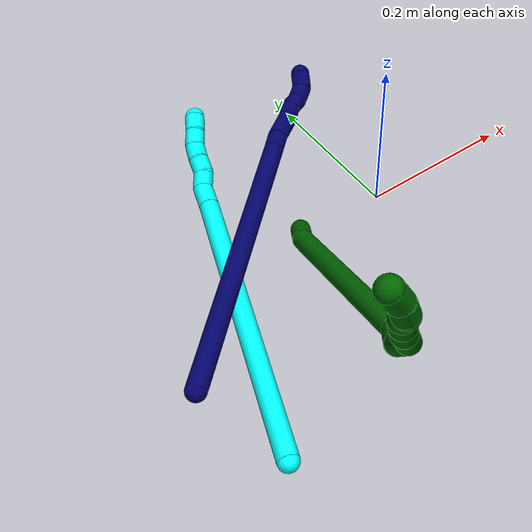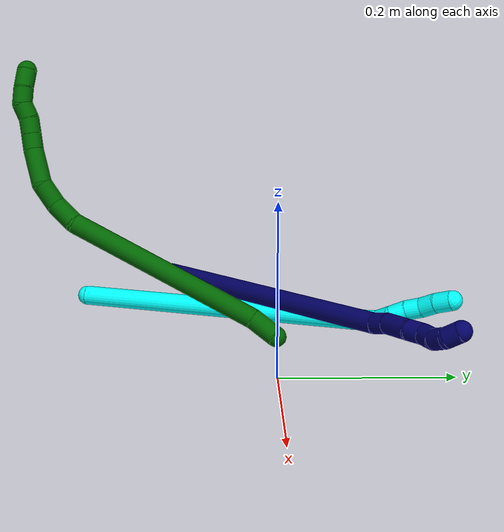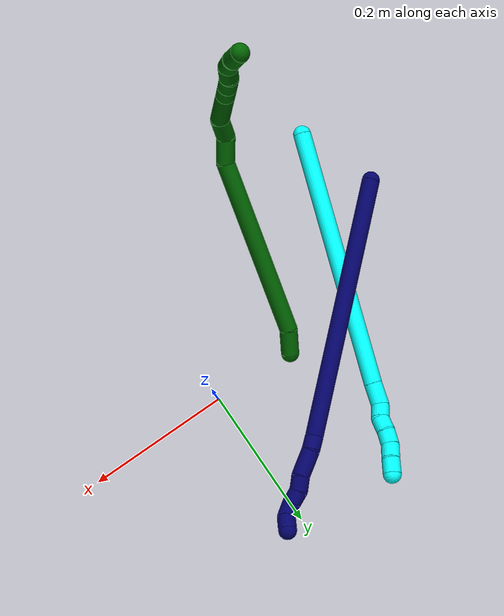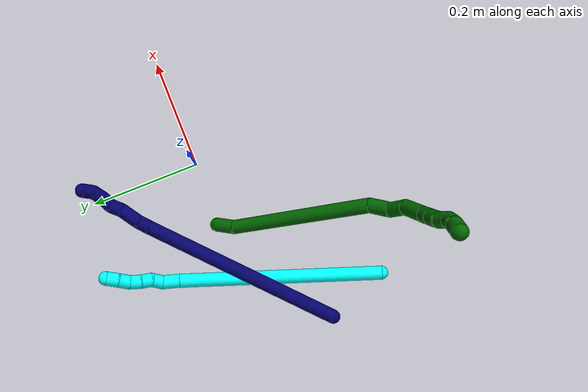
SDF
<sdf version="1.7">
 <world name="default">
  <model name="3">
   <static>0</static>
   <link name="3">
    <collision name="collision-cylinder-e_1_1_4">
     <pose>0.031161 0.158458 0.084653 -1.08014 0.171743 -0.103126</pose>
     <geometry><cylinder><radius>0.0125</radius><length>0.36467</length></cylinder></geometry>
     <surface>
      <friction><ode><mu>1.16</mu><mu2>1.16</mu2><slip1>0</slip1><slip2>0</slip2></ode></friction>
      <contact><ode><kp>1e+06</kp><kd>1</kd><max_vel>0</max_vel><min_depth>0.001</min_depth></ode></contact>
     </surface>
    </collision>
    <visual name="visual-cylinder-e_1_1_4">
     <pose>0.031161 0.158458 0.084653 -1.08014 0.171743 -0.103126</pose>
     <geometry><cylinder><radius>0.0125</radius><length>0.36467</length></cylinder></geometry>
     <material><ambient>0.003922 1 0.996078 1</ambient></material>
    </visual>
    <collision name="collision-cylinder-e_2_4_5">
     <pose>0.066084 0.330726 0.176191 -1.1083 0.239134 -0.148419</pose>
     <geometry><cylinder><radius>0.0125</radius><length>0.031768</length></cylinder></geometry>
     <surface>
      <friction><ode><mu>1.16</mu><mu2>1.16</mu2><slip1>0</slip1><slip2>0</slip2></ode></friction>
      <contact><ode><kp>1e+06</kp><kd>1</kd><max_vel>0</max_vel><min_depth>0.001</min_depth></ode></contact>
     </surface>
    </collision>
    <visual name="visual-cylinder-e_2_4_5">
     <pose>0.066084 0.330726 0.176191 -1.1083 0.239134 -0.148419</pose>
     <geometry><cylinder><radius>0.0125</radius><length>0.031768</length></cylinder></geometry>
     <material><ambient>0.003922 1 0.996078 1</ambient></material>
    </visual>
    <collision name="collision-cylinder-e_3_5_6">
     <pose>0.071377 0.354895 0.1825 -1.62641 0.146449 -0.154796</pose>
     <geometry><cylinder><radius>0.0125</radius><length>0.020973</length></cylinder></geometry>
     <surface>
      <friction><ode><mu>1.16</mu><mu2>1.16</mu2><slip1>0</slip1><slip2>0</slip2></ode></friction>
      <contact><ode><kp>1e+06</kp><kd>1</kd><max_vel>0</max_vel><min_depth>0.001</min_depth></ode></contact>
     </surface>
    </collision>
    <visual name="visual-cylinder-e_3_5_6">
     <pose>0.071377 0.354895 0.1825 -1.62641 0.146449 -0.154796</pose>
     <geometry><cylinder><radius>0.0125</radius><length>0.020973</length></cylinder></geometry>
     <material><ambient>0.003922 1 0.996078 1</ambient></material>
    </visual>
    <collision name="collision-cylinder-e_4_6_7">
     <pose>0.077542 0.373993 0.183513 -1.39089 0.480851 -0.403631</pose>
     <geometry><cylinder><radius>0.0125</radius><length>0.02004</length></cylinder></geometry>
     <surface>
      <friction><ode><mu>1.16</mu><mu2>1.16</mu2><slip1>0</slip1><slip2>0</slip2></ode></friction>
      <contact><ode><kp>1e+06</kp><kd>1</kd><max_vel>0</max_vel><min_depth>0.001</min_depth></ode></contact>
     </surface>
    </collision>
    <visual name="visual-cylinder-e_4_6_7">
     <pose>0.077542 0.373993 0.183513 -1.39089 0.480851 -0.403631</pose>
     <geometry><cylinder><radius>0.0125</radius><length>0.02004</length></cylinder></geometry>
     <material><ambient>0.003922 1 0.996078 1</ambient></material>
    </visual>
    <collision name="collision-cylinder-e_5_7_8">
     <pose>0.085291 0.392071 0.187442 -1.32531 0.312947 -0.244992</pose>
     <geometry><cylinder><radius>0.0125</radius><length>0.020234</length></cylinder></geometry>
     <surface>
      <friction><ode><mu>1.16</mu><mu2>1.16</mu2><slip1>0</slip1><slip2>0</slip2></ode></friction>
      <contact><ode><kp>1e+06</kp><kd>1</kd><max_vel>0</max_vel><min_depth>0.001</min_depth></ode></contact>
     </surface>
    </collision>
    <visual name="visual-cylinder-e_5_7_8">
     <pose>0.085291 0.392071 0.187442 -1.32531 0.312947 -0.244992</pose>
     <geometry><cylinder><radius>0.0125</radius><length>0.020234</length></cylinder></geometry>
     <material><ambient>0.003922 1 0.996078 1</ambient></material>
    </visual>
    <collision name="collision-cylinder-e_6_8_9">
     <pose>0.090148 0.411595 0.189638 -1.58493 0.169389 -0.171788</pose>
     <geometry><cylinder><radius>0.0125</radius><length>0.020671</length></cylinder></geometry>
     <surface>
      <friction><ode><mu>1.16</mu><mu2>1.16</mu2><slip1>0</slip1><slip2>0</slip2></ode></friction>
      <contact><ode><kp>1e+06</kp><kd>1</kd><max_vel>0</max_vel><min_depth>0.001</min_depth></ode></contact>
     </surface>
    </collision>
    <visual name="visual-cylinder-e_6_8_9">
     <pose>0.090148 0.411595 0.189638 -1.58493 0.169389 -0.171788</pose>
     <geometry><cylinder><radius>0.0125</radius><length>0.020671</length></cylinder></geometry>
     <material><ambient>0.003922 1 0.996078 1</ambient></material>
    </visual>
    <collision name="collision-cylinder-e_7_9_2">
     <pose>0.093497 0.432401 0.190823 -1.44631 0.149036 -0.131603</pose>
     <geometry><cylinder><radius>0.0125</radius><length>0.021644</length></cylinder></geometry>
     <surface>
      <friction><ode><mu>1.16</mu><mu2>1.16</mu2><slip1>0</slip1><slip2>0</slip2></ode></friction>
      <contact><ode><kp>1e+06</kp><kd>1</kd><max_vel>0</max_vel><min_depth>0.001</min_depth></ode></contact>
     </surface>
    </collision>
    <visual name="visual-cylinder-e_7_9_2">
     <pose>0.093497 0.432401 0.190823 -1.44631 0.149036 -0.131603</pose>
     <geometry><cylinder><radius>0.0125</radius><length>0.021644</length></cylinder></geometry>
     <material><ambient>0.003922 1 0.996078 1</ambient></material>
    </visual>
    <collision name="collision-sphere-2">
     <pose>0.095104 0.44302 0.192151 0 -0 0</pose>
     <geometry><sphere><radius>0.0125</radius></sphere></geometry>
     <surface>
      <friction><ode><mu>1.16</mu><mu2>1.16</mu2><slip1>0</slip1><slip2>0</slip2></ode></friction>
      <contact><ode><kp>1e+06</kp><kd>1</kd><max_vel>0</max_vel><min_depth>0.001</min_depth></ode></contact>
     </surface>
    </collision>
    <visual name="visual-sphere-2">
     <pose>0.095104 0.44302 0.192151 0 -0 0</pose>
     <geometry><sphere><radius>0.0125</radius></sphere></geometry>
     <material><ambient>0.003922 1 0.996078 1</ambient></material>
    </visual>
    <collision name="collision-sphere-9">
     <pose>0.09189 0.421781 0.189494 0 -0 0</pose>
     <geometry><sphere><radius>0.0125</radius></sphere></geometry>
     <surface>
      <friction><ode><mu>1.16</mu><mu2>1.16</mu2><slip1>0</slip1><slip2>0</slip2></ode></friction>
      <contact><ode><kp>1e+06</kp><kd>1</kd><max_vel>0</max_vel><min_depth>0.001</min_depth></ode></contact>
     </surface>
    </collision>
    <visual name="visual-sphere-9">
     <pose>0.09189 0.421781 0.189494 0 -0 0</pose>
     <geometry><sphere><radius>0.0125</radius></sphere></geometry>
     <material><ambient>0.003922 1 0.996078 1</ambient></material>
    </visual>
    <collision name="collision-sphere-4">
     <pose>0.062322 0.316915 0.169306 0 -0 0</pose>
     <geometry><sphere><radius>0.0125</radius></sphere></geometry>
     <surface>
      <friction><ode><mu>1.16</mu><mu2>1.16</mu2><slip1>0</slip1><slip2>0</slip2></ode></friction>
      <contact><ode><kp>1e+06</kp><kd>1</kd><max_vel>0</max_vel><min_depth>0.001</min_depth></ode></contact>
     </surface>
    </collision>
    <visual name="visual-sphere-4">
     <pose>0.062322 0.316915 0.169306 0 -0 0</pose>
     <geometry><sphere><radius>0.0125</radius></sphere></geometry>
     <material><ambient>0.003922 1 0.996078 1</ambient></material>
    </visual>
    <collision name="collision-sphere-1">
     <geometry><sphere><radius>0.0125</radius></sphere></geometry>
     <surface>
      <friction><ode><mu>1.16</mu><mu2>1.16</mu2><slip1>0</slip1><slip2>0</slip2></ode></friction>
      <contact><ode><kp>1e+06</kp><kd>1</kd><max_vel>0</max_vel><min_depth>0.001</min_depth></ode></contact>
     </surface>
    </collision>
    <visual name="visual-sphere-1">
     <geometry><sphere><radius>0.0125</radius></sphere></geometry>
     <material><ambient>0.003922 1 0.996078 1</ambient></material>
    </visual>
    <collision name="collision-sphere-8">
     <pose>0.088406 0.401408 0.189782 0 -0 0</pose>
     <geometry><sphere><radius>0.0125</radius></sphere></geometry>
     <surface>
      <friction><ode><mu>1.16</mu><mu2>1.16</mu2><slip1>0</slip1><slip2>0</slip2></ode></friction>
      <contact><ode><kp>1e+06</kp><kd>1</kd><max_vel>0</max_vel><min_depth>0.001</min_depth></ode></contact>
     </surface>
    </collision>
    <visual name="visual-sphere-8">
     <pose>0.088406 0.401408 0.189782 0 -0 0</pose>
     <geometry><sphere><radius>0.0125</radius></sphere></geometry>
     <material><ambient>0.003922 1 0.996078 1</ambient></material>
    </visual>
    <collision name="collision-sphere-5">
     <pose>0.069846 0.344537 0.183077 0 -0 0</pose>
     <geometry><sphere><radius>0.0125</radius></sphere></geometry>
     <surface>
      <friction><ode><mu>1.16</mu><mu2>1.16</mu2><slip1>0</slip1><slip2>0</slip2></ode></friction>
      <contact><ode><kp>1e+06</kp><kd>1</kd><max_vel>0</max_vel><min_depth>0.001</min_depth></ode></contact>
     </surface>
    </collision>
    <visual name="visual-sphere-5">
     <pose>0.069846 0.344537 0.183077 0 -0 0</pose>
     <geometry><sphere><radius>0.0125</radius></sphere></geometry>
     <material><ambient>0.003922 1 0.996078 1</ambient></material>
    </visual>
    <collision name="collision-sphere-6">
     <pose>0.072907 0.365253 0.181924 0 -0 0</pose>
     <geometry><sphere><radius>0.0125</radius></sphere></geometry>
     <surface>
      <friction><ode><mu>1.16</mu><mu2>1.16</mu2><slip1>0</slip1><slip2>0</slip2></ode></friction>
      <contact><ode><kp>1e+06</kp><kd>1</kd><max_vel>0</max_vel><min_depth>0.001</min_depth></ode></contact>
     </surface>
    </collision>
    <visual name="visual-sphere-6">
     <pose>0.072907 0.365253 0.181924 0 -0 0</pose>
     <geometry><sphere><radius>0.0125</radius></sphere></geometry>
     <material><ambient>0.003922 1 0.996078 1</ambient></material>
    </visual>
    <collision name="collision-sphere-7">
     <pose>0.082176 0.382734 0.185103 0 -0 0</pose>
     <geometry><sphere><radius>0.0125</radius></sphere></geometry>
     <surface>
      <friction><ode><mu>1.16</mu><mu2>1.16</mu2><slip1>0</slip1><slip2>0</slip2></ode></friction>
      <contact><ode><kp>1e+06</kp><kd>1</kd><max_vel>0</max_vel><min_depth>0.001</min_depth></ode></contact>
     </surface>
    </collision>
    <visual name="visual-sphere-7">
     <pose>0.082176 0.382734 0.185103 0 -0 0</pose>
     <geometry><sphere><radius>0.0125</radius></sphere></geometry>
     <material><ambient>0.003922 1 0.996078 1</ambient></material>
    </visual>
    <inertial>
     <pose>0.044253 0.218059 0.111632 0 -0 0</pose>
     <mass>0.5</mass>
     <inertia>
      <ixx>0.00358</ixx>
      <ixy>0</ixy>
      <ixz>0</ixz>
      <iyy>0.001588</iyy>
      <iyz>0</iyz>
      <izz>-0.004216</izz>
     </inertia>
    </inertial>
   </link>
   <pose>-0.307645 -0.240279 0.011498 2.7617 -0.567358 2.60086</pose>
  </model>
  <model name="6">
   <static>0</static>
   <link name="6">
    <collision name="collision-cylinder-e_1_1_4">
     <pose>-0.00504 -0.007785 0.015607 0.462693 -0.281319 -0.066685</pose>
     <geometry><cylinder><radius>0.0125</radius><length>0.036308</length></cylinder></geometry>
     <surface>
      <friction><ode><mu>1.16</mu><mu2>1.16</mu2><slip1>0</slip1><slip2>0</slip2></ode></friction>
      <contact><ode><kp>1e+06</kp><kd>1</kd><max_vel>0</max_vel><min_depth>0.001</min_depth></ode></contact>
     </surface>
    </collision>
    <visual name="visual-cylinder-e_1_1_4">
     <pose>-0.00504 -0.007785 0.015607 0.462693 -0.281319 -0.066685</pose>
     <geometry><cylinder><radius>0.0125</radius><length>0.036308</length></cylinder></geometry>
     <material><ambient>0 0.392157 0.003922 1</ambient></material>
    </visual>
    <collision name="collision-cylinder-e_2_4_5">
     <pose>-0.013662 -0.05783 0.148097 0.346939 -0.028815 -0.00505</pose>
     <geometry><cylinder><radius>0.0125</radius><length>0.248682</length></cylinder></geometry>
     <surface>
      <friction><ode><mu>1.16</mu><mu2>1.16</mu2><slip1>0</slip1><slip2>0</slip2></ode></friction>
      <contact><ode><kp>1e+06</kp><kd>1</kd><max_vel>0</max_vel><min_depth>0.001</min_depth></ode></contact>
     </surface>
    </collision>
    <visual name="visual-cylinder-e_2_4_5">
     <pose>-0.013662 -0.05783 0.148097 0.346939 -0.028815 -0.00505</pose>
     <geometry><cylinder><radius>0.0125</radius><length>0.248682</length></cylinder></geometry>
     <material><ambient>0 0.392157 0.003922 1</ambient></material>
    </visual>
    <collision name="collision-cylinder-e_3_5_6">
     <pose>-0.02412 -0.107481 0.279673 0.466026 -0.396015 -0.09516</pose>
     <geometry><cylinder><radius>0.0125</radius><length>0.035649</length></cylinder></geometry>
     <surface>
      <friction><ode><mu>1.16</mu><mu2>1.16</mu2><slip1>0</slip1><slip2>0</slip2></ode></friction>
      <contact><ode><kp>1e+06</kp><kd>1</kd><max_vel>0</max_vel><min_depth>0.001</min_depth></ode></contact>
     </surface>
    </collision>
    <visual name="visual-cylinder-e_3_5_6">
     <pose>-0.02412 -0.107481 0.279673 0.466026 -0.396015 -0.09516</pose>
     <geometry><cylinder><radius>0.0125</radius><length>0.035649</length></cylinder></geometry>
     <material><ambient>0 0.392157 0.003922 1</ambient></material>
    </visual>
    <collision name="collision-cylinder-e_4_6_7">
     <pose>-0.036297 -0.113734 0.309078 -0.077088 -0.344855 0.013432</pose>
     <geometry><cylinder><radius>0.0125</radius><length>0.031361</length></cylinder></geometry>
     <surface>
      <friction><ode><mu>1.16</mu><mu2>1.16</mu2><slip1>0</slip1><slip2>0</slip2></ode></friction>
      <contact><ode><kp>1e+06</kp><kd>1</kd><max_vel>0</max_vel><min_depth>0.001</min_depth></ode></contact>
     </surface>
    </collision>
    <visual name="visual-cylinder-e_4_6_7">
     <pose>-0.036297 -0.113734 0.309078 -0.077088 -0.344855 0.013432</pose>
     <geometry><cylinder><radius>0.0125</radius><length>0.031361</length></cylinder></geometry>
     <material><ambient>0 0.392157 0.003922 1</ambient></material>
    </visual>
    <collision name="collision-cylinder-e_5_7_8">
     <pose>-0.057124 -0.112022 0.339807 -0.035922 -0.769556 0.014548</pose>
     <geometry><cylinder><radius>0.0125</radius><length>0.044625</length></cylinder></geometry>
     <surface>
      <friction><ode><mu>1.16</mu><mu2>1.16</mu2><slip1>0</slip1><slip2>0</slip2></ode></friction>
      <contact><ode><kp>1e+06</kp><kd>1</kd><max_vel>0</max_vel><min_depth>0.001</min_depth></ode></contact>
     </surface>
    </collision>
    <visual name="visual-cylinder-e_5_7_8">
     <pose>-0.057124 -0.112022 0.339807 -0.035922 -0.769556 0.014548</pose>
     <geometry><cylinder><radius>0.0125</radius><length>0.044625</length></cylinder></geometry>
     <material><ambient>0 0.392157 0.003922 1</ambient></material>
    </visual>
    <collision name="collision-cylinder-e_6_8_9">
     <pose>-0.079708 -0.109536 0.362688 -0.271373 -0.780562 0.11221</pose>
     <geometry><cylinder><radius>0.0125</radius><length>0.020061</length></cylinder></geometry>
     <surface>
      <friction><ode><mu>1.16</mu><mu2>1.16</mu2><slip1>0</slip1><slip2>0</slip2></ode></friction>
      <contact><ode><kp>1e+06</kp><kd>1</kd><max_vel>0</max_vel><min_depth>0.001</min_depth></ode></contact>
     </surface>
    </collision>
    <visual name="visual-cylinder-e_6_8_9">
     <pose>-0.079708 -0.109536 0.362688 -0.271373 -0.780562 0.11221</pose>
     <geometry><cylinder><radius>0.0125</radius><length>0.020061</length></cylinder></geometry>
     <material><ambient>0 0.392157 0.003922 1</ambient></material>
    </visual>
    <collision name="collision-cylinder-e_7_9_10">
     <pose>-0.093787 -0.105739 0.376471 -0.266238 -0.774951 0.109192</pose>
     <geometry><cylinder><radius>0.0125</radius><length>0.020071</length></cylinder></geometry>
     <surface>
      <friction><ode><mu>1.16</mu><mu2>1.16</mu2><slip1>0</slip1><slip2>0</slip2></ode></friction>
      <contact><ode><kp>1e+06</kp><kd>1</kd><max_vel>0</max_vel><min_depth>0.001</min_depth></ode></contact>
     </surface>
    </collision>
    <visual name="visual-cylinder-e_7_9_10">
     <pose>-0.093787 -0.105739 0.376471 -0.266238 -0.774951 0.109192</pose>
     <geometry><cylinder><radius>0.0125</radius><length>0.020071</length></cylinder></geometry>
     <material><ambient>0 0.392157 0.003922 1</ambient></material>
    </visual>
    <collision name="collision-cylinder-e_8_10_11">
     <pose>-0.105758 -0.102831 0.39203 -0.117678 -0.517117 0.031157</pose>
     <geometry><cylinder><radius>0.0125</radius><length>0.020022</length></cylinder></geometry>
     <surface>
      <friction><ode><mu>1.16</mu><mu2>1.16</mu2><slip1>0</slip1><slip2>0</slip2></ode></friction>
      <contact><ode><kp>1e+06</kp><kd>1</kd><max_vel>0</max_vel><min_depth>0.001</min_depth></ode></contact>
     </surface>
    </collision>
    <visual name="visual-cylinder-e_8_10_11">
     <pose>-0.105758 -0.102831 0.39203 -0.117678 -0.517117 0.031157</pose>
     <geometry><cylinder><radius>0.0125</radius><length>0.020022</length></cylinder></geometry>
     <material><ambient>0 0.392157 0.003922 1</ambient></material>
    </visual>
    <collision name="collision-cylinder-e_9_11_12">
     <pose>-0.118884 -0.098754 0.405992 -0.521353 -0.92712 0.265124</pose>
     <geometry><cylinder><radius>0.0125</radius><length>0.020444</length></cylinder></geometry>
     <surface>
      <friction><ode><mu>1.16</mu><mu2>1.16</mu2><slip1>0</slip1><slip2>0</slip2></ode></friction>
      <contact><ode><kp>1e+06</kp><kd>1</kd><max_vel>0</max_vel><min_depth>0.001</min_depth></ode></contact>
     </surface>
    </collision>
    <visual name="visual-cylinder-e_9_11_12">
     <pose>-0.118884 -0.098754 0.405992 -0.521353 -0.92712 0.265124</pose>
     <geometry><cylinder><radius>0.0125</radius><length>0.020444</length></cylinder></geometry>
     <material><ambient>0 0.392157 0.003922 1</ambient></material>
    </visual>
    <collision name="collision-cylinder-e_10_12_2">
     <pose>-0.137245 -0.093547 0.415931 -0.435883 -1.10682 0.271948</pose>
     <geometry><cylinder><radius>0.0125</radius><length>0.022775</length></cylinder></geometry>
     <surface>
      <friction><ode><mu>1.16</mu><mu2>1.16</mu2><slip1>0</slip1><slip2>0</slip2></ode></friction>
      <contact><ode><kp>1e+06</kp><kd>1</kd><max_vel>0</max_vel><min_depth>0.001</min_depth></ode></contact>
     </surface>
    </collision>
    <visual name="visual-cylinder-e_10_12_2">
     <pose>-0.137245 -0.093547 0.415931 -0.435883 -1.10682 0.271948</pose>
     <geometry><cylinder><radius>0.0125</radius><length>0.022775</length></cylinder></geometry>
     <material><ambient>0 0.392157 0.003922 1</ambient></material>
    </visual>
    <collision name="collision-sphere-2">
     <pose>-0.147428 -0.091395 0.420551 0 -0 0</pose>
     <geometry><sphere><radius>0.0125</radius></sphere></geometry>
     <surface>
      <friction><ode><mu>1.16</mu><mu2>1.16</mu2><slip1>0</slip1><slip2>0</slip2></ode></friction>
      <contact><ode><kp>1e+06</kp><kd>1</kd><max_vel>0</max_vel><min_depth>0.001</min_depth></ode></contact>
     </surface>
    </collision>
    <visual name="visual-sphere-2">
     <pose>-0.147428 -0.091395 0.420551 0 -0 0</pose>
     <geometry><sphere><radius>0.0125</radius></sphere></geometry>
     <material><ambient>0 0.392157 0.003922 1</ambient></material>
    </visual>
    <collision name="collision-sphere-12">
     <pose>-0.127061 -0.095698 0.411312 0 -0 0</pose>
     <geometry><sphere><radius>0.0125</radius></sphere></geometry>
     <surface>
      <friction><ode><mu>1.16</mu><mu2>1.16</mu2><slip1>0</slip1><slip2>0</slip2></ode></friction>
      <contact><ode><kp>1e+06</kp><kd>1</kd><max_vel>0</max_vel><min_depth>0.001</min_depth></ode></contact>
     </surface>
    </collision>
    <visual name="visual-sphere-12">
     <pose>-0.127061 -0.095698 0.411312 0 -0 0</pose>
     <geometry><sphere><radius>0.0125</radius></sphere></geometry>
     <material><ambient>0 0.392157 0.003922 1</ambient></material>
    </visual>
    <collision name="collision-sphere-11">
     <pose>-0.110707 -0.101809 0.400672 0 -0 0</pose>
     <geometry><sphere><radius>0.0125</radius></sphere></geometry>
     <surface>
      <friction><ode><mu>1.16</mu><mu2>1.16</mu2><slip1>0</slip1><slip2>0</slip2></ode></friction>
      <contact><ode><kp>1e+06</kp><kd>1</kd><max_vel>0</max_vel><min_depth>0.001</min_depth></ode></contact>
     </surface>
    </collision>
    <visual name="visual-sphere-11">
     <pose>-0.110707 -0.101809 0.400672 0 -0 0</pose>
     <geometry><sphere><radius>0.0125</radius></sphere></geometry>
     <material><ambient>0 0.392157 0.003922 1</ambient></material>
    </visual>
    <collision name="collision-sphere-10">
     <pose>-0.100809 -0.103853 0.383388 0 -0 0</pose>
     <geometry><sphere><radius>0.0125</radius></sphere></geometry>
     <surface>
      <friction><ode><mu>1.16</mu><mu2>1.16</mu2><slip1>0</slip1><slip2>0</slip2></ode></friction>
      <contact><ode><kp>1e+06</kp><kd>1</kd><max_vel>0</max_vel><min_depth>0.001</min_depth></ode></contact>
     </surface>
    </collision>
    <visual name="visual-sphere-10">
     <pose>-0.100809 -0.103853 0.383388 0 -0 0</pose>
     <geometry><sphere><radius>0.0125</radius></sphere></geometry>
     <material><ambient>0 0.392157 0.003922 1</ambient></material>
    </visual>
    <collision name="collision-sphere-9">
     <pose>-0.086766 -0.107625 0.369554 0 -0 0</pose>
     <geometry><sphere><radius>0.0125</radius></sphere></geometry>
     <surface>
      <friction><ode><mu>1.16</mu><mu2>1.16</mu2><slip1>0</slip1><slip2>0</slip2></ode></friction>
      <contact><ode><kp>1e+06</kp><kd>1</kd><max_vel>0</max_vel><min_depth>0.001</min_depth></ode></contact>
     </surface>
    </collision>
    <visual name="visual-sphere-9">
     <pose>-0.086766 -0.107625 0.369554 0 -0 0</pose>
     <geometry><sphere><radius>0.0125</radius></sphere></geometry>
     <material><ambient>0 0.392157 0.003922 1</ambient></material>
    </visual>
    <collision name="collision-sphere-4">
     <pose>-0.01008 -0.015569 0.031213 0 -0 0</pose>
     <geometry><sphere><radius>0.0125</radius></sphere></geometry>
     <surface>
      <friction><ode><mu>1.16</mu><mu2>1.16</mu2><slip1>0</slip1><slip2>0</slip2></ode></friction>
      <contact><ode><kp>1e+06</kp><kd>1</kd><max_vel>0</max_vel><min_depth>0.001</min_depth></ode></contact>
     </surface>
    </collision>
    <visual name="visual-sphere-4">
     <pose>-0.01008 -0.015569 0.031213 0 -0 0</pose>
     <geometry><sphere><radius>0.0125</radius></sphere></geometry>
     <material><ambient>0 0.392157 0.003922 1</ambient></material>
    </visual>
    <collision name="collision-sphere-1">
     <geometry><sphere><radius>0.0125</radius></sphere></geometry>
     <surface>
      <friction><ode><mu>1.16</mu><mu2>1.16</mu2><slip1>0</slip1><slip2>0</slip2></ode></friction>
      <contact><ode><kp>1e+06</kp><kd>1</kd><max_vel>0</max_vel><min_depth>0.001</min_depth></ode></contact>
     </surface>
    </collision>
    <visual name="visual-sphere-1">
     <geometry><sphere><radius>0.0125</radius></sphere></geometry>
     <material><ambient>0 0.392157 0.003922 1</ambient></material>
    </visual>
    <collision name="collision-sphere-8">
     <pose>-0.072649 -0.111446 0.355822 0 -0 0</pose>
     <geometry><sphere><radius>0.0125</radius></sphere></geometry>
     <surface>
      <friction><ode><mu>1.16</mu><mu2>1.16</mu2><slip1>0</slip1><slip2>0</slip2></ode></friction>
      <contact><ode><kp>1e+06</kp><kd>1</kd><max_vel>0</max_vel><min_depth>0.001</min_depth></ode></contact>
     </surface>
    </collision>
    <visual name="visual-sphere-8">
     <pose>-0.072649 -0.111446 0.355822 0 -0 0</pose>
     <geometry><sphere><radius>0.0125</radius></sphere></geometry>
     <material><ambient>0 0.392157 0.003922 1</ambient></material>
    </visual>
    <collision name="collision-sphere-5">
     <pose>-0.017245 -0.100091 0.264981 0 -0 0</pose>
     <geometry><sphere><radius>0.0125</radius></sphere></geometry>
     <surface>
      <friction><ode><mu>1.16</mu><mu2>1.16</mu2><slip1>0</slip1><slip2>0</slip2></ode></friction>
      <contact><ode><kp>1e+06</kp><kd>1</kd><max_vel>0</max_vel><min_depth>0.001</min_depth></ode></contact>
     </surface>
    </collision>
    <visual name="visual-sphere-5">
     <pose>-0.017245 -0.100091 0.264981 0 -0 0</pose>
     <geometry><sphere><radius>0.0125</radius></sphere></geometry>
     <material><ambient>0 0.392157 0.003922 1</ambient></material>
    </visual>
    <collision name="collision-sphere-6">
     <pose>-0.030996 -0.11487 0.294364 0 -0 0</pose>
     <geometry><sphere><radius>0.0125</radius></sphere></geometry>
     <surface>
      <friction><ode><mu>1.16</mu><mu2>1.16</mu2><slip1>0</slip1><slip2>0</slip2></ode></friction>
      <contact><ode><kp>1e+06</kp><kd>1</kd><max_vel>0</max_vel><min_depth>0.001</min_depth></ode></contact>
     </surface>
    </collision>
    <visual name="visual-sphere-6">
     <pose>-0.030996 -0.11487 0.294364 0 -0 0</pose>
     <geometry><sphere><radius>0.0125</radius></sphere></geometry>
     <material><ambient>0 0.392157 0.003922 1</ambient></material>
    </visual>
    <collision name="collision-sphere-7">
     <pose>-0.041598 -0.112597 0.323791 0 -0 0</pose>
     <geometry><sphere><radius>0.0125</radius></sphere></geometry>
     <surface>
      <friction><ode><mu>1.16</mu><mu2>1.16</mu2><slip1>0</slip1><slip2>0</slip2></ode></friction>
      <contact><ode><kp>1e+06</kp><kd>1</kd><max_vel>0</max_vel><min_depth>0.001</min_depth></ode></contact>
     </surface>
    </collision>
    <visual name="visual-sphere-7">
     <pose>-0.041598 -0.112597 0.323791 0 -0 0</pose>
     <geometry><sphere><radius>0.0125</radius></sphere></geometry>
     <material><ambient>0 0.392157 0.003922 1</ambient></material>
    </visual>
    <inertial>
     <pose>-0.038566 -0.075179 0.225355 0 -0 0</pose>
     <mass>0.5</mass>
     <inertia>
      <ixx>0.001298</ixx>
      <ixy>0</ixy>
      <ixz>0</ixz>
      <iyy>0.001231</iyy>
      <iyz>0</iyz>
      <izz>0.000528</izz>
     </inertia>
    </inertial>
   </link>
   <pose>-0.117209 0.004326 0.011489 0.672627 0.640494 -0.552019</pose>
  </model>
  <model name="7">
   <static>0</static>
   <link name="7">
    <collision name="collision-cylinder-e_1_1_4">
     <pose>0.067456 0.168437 0.009367 -1.51524 0.380388 -0.360275</pose>
     <geometry><cylinder><radius>0.0125</radius><length>0.363369</length></cylinder></geometry>
     <surface>
      <friction><ode><mu>1.16</mu><mu2>1.16</mu2><slip1>0</slip1><slip2>0</slip2></ode></friction>
      <contact><ode><kp>1e+06</kp><kd>1</kd><max_vel>0</max_vel><min_depth>0.001</min_depth></ode></contact>
     </surface>
    </collision>
    <visual name="visual-cylinder-e_1_1_4">
     <pose>0.067456 0.168437 0.009367 -1.51524 0.380388 -0.360275</pose>
     <geometry><cylinder><radius>0.0125</radius><length>0.363369</length></cylinder></geometry>
     <material><ambient>0.003922 0 0.403922 1</ambient></material>
    </visual>
    <collision name="collision-cylinder-e_2_4_5">
     <pose>0.139723 0.345453 0.02084 -1.33016 0.498755 -0.39429</pose>
     <geometry><cylinder><radius>0.0125</radius><length>0.020117</length></cylinder></geometry>
     <surface>
      <friction><ode><mu>1.16</mu><mu2>1.16</mu2><slip1>0</slip1><slip2>0</slip2></ode></friction>
      <contact><ode><kp>1e+06</kp><kd>1</kd><max_vel>0</max_vel><min_depth>0.001</min_depth></ode></contact>
     </surface>
    </collision>
    <visual name="visual-cylinder-e_2_4_5">
     <pose>0.139723 0.345453 0.02084 -1.33016 0.498755 -0.39429</pose>
     <geometry><cylinder><radius>0.0125</radius><length>0.020117</length></cylinder></geometry>
     <material><ambient>0.003922 0 0.403922 1</ambient></material>
    </visual>
    <collision name="collision-cylinder-e_3_5_6">
     <pose>0.153721 0.369675 0.022836 -1.57777 0.531014 -0.534558</pose>
     <geometry><cylinder><radius>0.0125</radius><length>0.036283</length></cylinder></geometry>
     <surface>
      <friction><ode><mu>1.16</mu><mu2>1.16</mu2><slip1>0</slip1><slip2>0</slip2></ode></friction>
      <contact><ode><kp>1e+06</kp><kd>1</kd><max_vel>0</max_vel><min_depth>0.001</min_depth></ode></contact>
     </surface>
    </collision>
    <visual name="visual-cylinder-e_3_5_6">
     <pose>0.153721 0.369675 0.022836 -1.57777 0.531014 -0.534558</pose>
     <geometry><cylinder><radius>0.0125</radius><length>0.036283</length></cylinder></geometry>
     <material><ambient>0.003922 0 0.403922 1</ambient></material>
    </visual>
    <collision name="collision-cylinder-e_4_6_7">
     <pose>0.165667 0.394987 0.023084 -1.53384 0.277735 -0.267778</pose>
     <geometry><cylinder><radius>0.0125</radius><length>0.020124</length></cylinder></geometry>
     <surface>
      <friction><ode><mu>1.16</mu><mu2>1.16</mu2><slip1>0</slip1><slip2>0</slip2></ode></friction>
      <contact><ode><kp>1e+06</kp><kd>1</kd><max_vel>0</max_vel><min_depth>0.001</min_depth></ode></contact>
     </surface>
    </collision>
    <visual name="visual-cylinder-e_4_6_7">
     <pose>0.165667 0.394987 0.023084 -1.53384 0.277735 -0.267778</pose>
     <geometry><cylinder><radius>0.0125</radius><length>0.020124</length></cylinder></geometry>
     <material><ambient>0.003922 0 0.403922 1</ambient></material>
    </visual>
    <collision name="collision-cylinder-e_5_7_8">
     <pose>0.174197 0.412737 0.022095 -1.73592 0.613741 -0.715883</pose>
     <geometry><cylinder><radius>0.0125</radius><length>0.020041</length></cylinder></geometry>
     <surface>
      <friction><ode><mu>1.16</mu><mu2>1.16</mu2><slip1>0</slip1><slip2>0</slip2></ode></friction>
      <contact><ode><kp>1e+06</kp><kd>1</kd><max_vel>0</max_vel><min_depth>0.001</min_depth></ode></contact>
     </surface>
    </collision>
    <visual name="visual-cylinder-e_5_7_8">
     <pose>0.174197 0.412737 0.022095 -1.73592 0.613741 -0.715883</pose>
     <geometry><cylinder><radius>0.0125</radius><length>0.020041</length></cylinder></geometry>
     <material><ambient>0.003922 0 0.403922 1</ambient></material>
    </visual>
    <collision name="collision-cylinder-e_6_8_9">
     <pose>0.185916 0.428448 0.023297 -1.24859 0.636649 -0.466167</pose>
     <geometry><cylinder><radius>0.0125</radius><length>0.020011</length></cylinder></geometry>
     <surface>
      <friction><ode><mu>1.16</mu><mu2>1.16</mu2><slip1>0</slip1><slip2>0</slip2></ode></friction>
      <contact><ode><kp>1e+06</kp><kd>1</kd><max_vel>0</max_vel><min_depth>0.001</min_depth></ode></contact>
     </surface>
    </collision>
    <visual name="visual-cylinder-e_6_8_9">
     <pose>0.185916 0.428448 0.023297 -1.24859 0.636649 -0.466167</pose>
     <geometry><cylinder><radius>0.0125</radius><length>0.020011</length></cylinder></geometry>
     <material><ambient>0.003922 0 0.403922 1</ambient></material>
    </visual>
    <collision name="collision-cylinder-e_7_9_2">
     <pose>0.194818 0.443532 0.03187 -0.890809 0.298952 -0.143545</pose>
     <geometry><cylinder><radius>0.0125</radius><length>0.020057</length></cylinder></geometry>
     <surface>
      <friction><ode><mu>1.16</mu><mu2>1.16</mu2><slip1>0</slip1><slip2>0</slip2></ode></friction>
      <contact><ode><kp>1e+06</kp><kd>1</kd><max_vel>0</max_vel><min_depth>0.001</min_depth></ode></contact>
     </surface>
    </collision>
    <visual name="visual-cylinder-e_7_9_2">
     <pose>0.194818 0.443532 0.03187 -0.890809 0.298952 -0.143545</pose>
     <geometry><cylinder><radius>0.0125</radius><length>0.020057</length></cylinder></geometry>
     <material><ambient>0.003922 0 0.403922 1</ambient></material>
    </visual>
    <collision name="collision-sphere-2">
     <pose>0.197771 0.450984 0.037896 0 -0 0</pose>
     <geometry><sphere><radius>0.0125</radius></sphere></geometry>
     <surface>
      <friction><ode><mu>1.16</mu><mu2>1.16</mu2><slip1>0</slip1><slip2>0</slip2></ode></friction>
      <contact><ode><kp>1e+06</kp><kd>1</kd><max_vel>0</max_vel><min_depth>0.001</min_depth></ode></contact>
     </surface>
    </collision>
    <visual name="visual-sphere-2">
     <pose>0.197771 0.450984 0.037896 0 -0 0</pose>
     <geometry><sphere><radius>0.0125</radius></sphere></geometry>
     <material><ambient>0.003922 0 0.403922 1</ambient></material>
    </visual>
    <collision name="collision-sphere-9">
     <pose>0.191864 0.43608 0.025844 0 -0 0</pose>
     <geometry><sphere><radius>0.0125</radius></sphere></geometry>
     <surface>
      <friction><ode><mu>1.16</mu><mu2>1.16</mu2><slip1>0</slip1><slip2>0</slip2></ode></friction>
      <contact><ode><kp>1e+06</kp><kd>1</kd><max_vel>0</max_vel><min_depth>0.001</min_depth></ode></contact>
     </surface>
    </collision>
    <visual name="visual-sphere-9">
     <pose>0.191864 0.43608 0.025844 0 -0 0</pose>
     <geometry><sphere><radius>0.0125</radius></sphere></geometry>
     <material><ambient>0.003922 0 0.403922 1</ambient></material>
    </visual>
    <collision name="collision-sphere-4">
     <pose>0.134912 0.336875 0.018735 0 -0 0</pose>
     <geometry><sphere><radius>0.0125</radius></sphere></geometry>
     <surface>
      <friction><ode><mu>1.16</mu><mu2>1.16</mu2><slip1>0</slip1><slip2>0</slip2></ode></friction>
      <contact><ode><kp>1e+06</kp><kd>1</kd><max_vel>0</max_vel><min_depth>0.001</min_depth></ode></contact>
     </surface>
    </collision>
    <visual name="visual-sphere-4">
     <pose>0.134912 0.336875 0.018735 0 -0 0</pose>
     <geometry><sphere><radius>0.0125</radius></sphere></geometry>
     <material><ambient>0.003922 0 0.403922 1</ambient></material>
    </visual>
    <collision name="collision-sphere-1">
     <geometry><sphere><radius>0.0125</radius></sphere></geometry>
     <surface>
      <friction><ode><mu>1.16</mu><mu2>1.16</mu2><slip1>0</slip1><slip2>0</slip2></ode></friction>
      <contact><ode><kp>1e+06</kp><kd>1</kd><max_vel>0</max_vel><min_depth>0.001</min_depth></ode></contact>
     </surface>
    </collision>
    <visual name="visual-sphere-1">
     <geometry><sphere><radius>0.0125</radius></sphere></geometry>
     <material><ambient>0.003922 0 0.403922 1</ambient></material>
    </visual>
    <collision name="collision-sphere-8">
     <pose>0.179968 0.420817 0.020749 0 -0 0</pose>
     <geometry><sphere><radius>0.0125</radius></sphere></geometry>
     <surface>
      <friction><ode><mu>1.16</mu><mu2>1.16</mu2><slip1>0</slip1><slip2>0</slip2></ode></friction>
      <contact><ode><kp>1e+06</kp><kd>1</kd><max_vel>0</max_vel><min_depth>0.001</min_depth></ode></contact>
     </surface>
    </collision>
    <visual name="visual-sphere-8">
     <pose>0.179968 0.420817 0.020749 0 -0 0</pose>
     <geometry><sphere><radius>0.0125</radius></sphere></geometry>
     <material><ambient>0.003922 0 0.403922 1</ambient></material>
    </visual>
    <collision name="collision-sphere-5">
     <pose>0.144535 0.354032 0.022945 0 -0 0</pose>
     <geometry><sphere><radius>0.0125</radius></sphere></geometry>
     <surface>
      <friction><ode><mu>1.16</mu><mu2>1.16</mu2><slip1>0</slip1><slip2>0</slip2></ode></friction>
      <contact><ode><kp>1e+06</kp><kd>1</kd><max_vel>0</max_vel><min_depth>0.001</min_depth></ode></contact>
     </surface>
    </collision>
    <visual name="visual-sphere-5">
     <pose>0.144535 0.354032 0.022945 0 -0 0</pose>
     <geometry><sphere><radius>0.0125</radius></sphere></geometry>
     <material><ambient>0.003922 0 0.403922 1</ambient></material>
    </visual>
    <collision name="collision-sphere-6">
     <pose>0.162908 0.385318 0.022727 0 -0 0</pose>
     <geometry><sphere><radius>0.0125</radius></sphere></geometry>
     <surface>
      <friction><ode><mu>1.16</mu><mu2>1.16</mu2><slip1>0</slip1><slip2>0</slip2></ode></friction>
      <contact><ode><kp>1e+06</kp><kd>1</kd><max_vel>0</max_vel><min_depth>0.001</min_depth></ode></contact>
     </surface>
    </collision>
    <visual name="visual-sphere-6">
     <pose>0.162908 0.385318 0.022727 0 -0 0</pose>
     <geometry><sphere><radius>0.0125</radius></sphere></geometry>
     <material><ambient>0.003922 0 0.403922 1</ambient></material>
    </visual>
    <collision name="collision-sphere-7">
     <pose>0.168426 0.404657 0.023442 0 -0 0</pose>
     <geometry><sphere><radius>0.0125</radius></sphere></geometry>
     <surface>
      <friction><ode><mu>1.16</mu><mu2>1.16</mu2><slip1>0</slip1><slip2>0</slip2></ode></friction>
      <contact><ode><kp>1e+06</kp><kd>1</kd><max_vel>0</max_vel><min_depth>0.001</min_depth></ode></contact>
     </surface>
    </collision>
    <visual name="visual-sphere-7">
     <pose>0.168426 0.404657 0.023442 0 -0 0</pose>
     <geometry><sphere><radius>0.0125</radius></sphere></geometry>
     <material><ambient>0.003922 0 0.403922 1</ambient></material>
    </visual>
    <inertial>
     <pose>0.094704 0.230513 0.013329 0 -0 0</pose>
     <mass>0.5</mass>
     <inertia>
      <ixx>0.002194</ixx>
      <ixy>0</ixy>
      <ixz>0</ixz>
      <iyy>-0.000546</iyy>
      <iyz>0</iyz>
      <izz>-0.005223</izz>
     </inertia>
    </inertial>
   </link>
   <pose>-0.34532 -0.128187 0.032601 -0.230716 -0.457526 -0.410619</pose>
  </model>
 </world>
</sdf>
